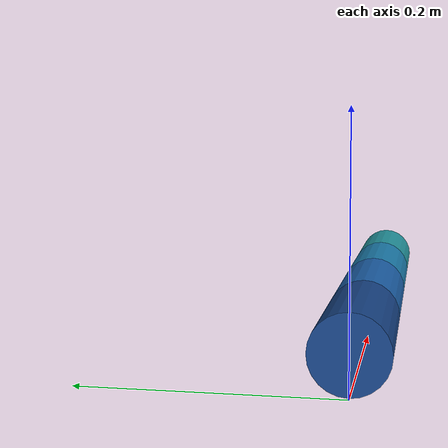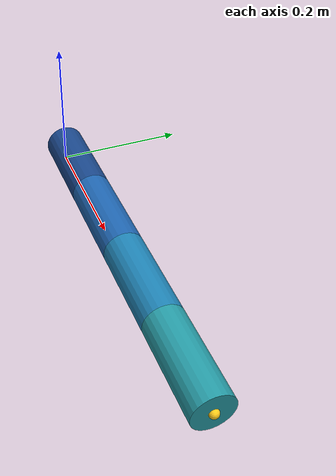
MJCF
<mujoco model="three_dof_ground_crawler_cylinder_3d">

  <compiler angle="radian" autolimits="true" inertiafromgeom="true"/>

  <default>
    <default class="link_collision">
      <geom
        type="cylinder"
        size="0.030 0.070"
        quat="0.7071067812 0 0.7071067812 0"
        mass="0.055"
        friction="1.10 0.005 0.0001"
        solref="0.006 1"
        solimp="0.90 0.95 0.001"
        condim="4"
        contype="1"
        conaffinity="1"
        margin="0.001"
        rgba="0 0 0 0"/>
    </default>

    <!-- Identical cylinder used only for visualization. -->
    <default class="link_visual">
      <geom
        type="cylinder"
        size="0.030 0.070"
        quat="0.7071067812 0 0.7071067812 0"
        mass="0"
        contype="0"
        conaffinity="0"
        group="1"/>
    </default>

    <!--
      Servo mass near each hinge. It contributes mass/inertia but is invisible
      and non-colliding, so the visible robot remains purely cylindrical.
    -->
    <default class="servo_mass">
      <geom
        type="ellipsoid"
        size="0.0203 0.0103 0.0200"
        mass="0.063"
        rgba="0 0 0 0"
        contype="0"
        conaffinity="0"
        group="3"/>
    </default>

    <!-- -90 to +90 degrees. Axis is overridden per joint below. -->
    <default class="crawler_joint">
      <joint
        type="hinge"
        range="-1.5707963268 1.5707963268"
        limited="true"
        damping="0.30"
        armature="0.002"
        frictionloss="0.05"
        margin="0.035"
        solreflimit="0.004 1"
        solimplimit="0.90 0.99 0.001"/>
    </default>

    <!-- Position command limits also equal -90 to +90 degrees. -->
    <default class="crawler_servo">
      <position
        kp="35"
        kv="1.5"
        ctrlrange="-1.5707963268 1.5707963268"
        ctrllimited="true"
        forcerange="-3.491 3.491"
        forcelimited="true"/>
    </default>
  </default>

  <worldbody>
    <!-- Root height equals the cylinder radius plus a small clearance. -->
    <body name="segment_0" pos="0 0 0.031">
      <freejoint name="root"/>

      <!-- Segment 0 extends from x=0.00 to x=0.14 m. -->
      <geom name="segment_0_collision" class="link_collision" pos="0.070 0 0"/>
      <geom name="segment_0_visual" class="link_visual" pos="0.070 0 0"
            rgba="0.10 0.28 0.55 1"/>

      <site name="imu_site" pos="0.070 0 0.022" size="0.008" rgba="1 0.2 0.2 1"/>
      <site name="base_reference" pos="0.070 0 0" size="0.006" rgba="0.2 1 0.2 1"/>

      <!-- Joint 1: yaw around local Z. -->
      <body name="segment_1" pos="0.140 0 0">
        <joint name="joint_1" class="crawler_joint" axis="0 0 1"/>
        <geom name="servo_1_mass" class="servo_mass" pos="0 0 0"/>
        <geom name="segment_1_collision" class="link_collision" pos="0.070 0 0"/>
        <geom name="segment_1_visual" class="link_visual" pos="0.070 0 0"
              rgba="0.12 0.40 0.70 1"/>

        <!-- Joint 2: pitch around local Y. -->
        <body name="segment_2" pos="0.140 0 0">
          <joint name="joint_2" class="crawler_joint" axis="0 1 0"/>
          <geom name="servo_2_mass" class="servo_mass" pos="0 0 0"/>
          <geom name="segment_2_collision" class="link_collision" pos="0.070 0 0"/>
          <geom name="segment_2_visual" class="link_visual" pos="0.070 0 0"
                rgba="0.12 0.52 0.72 1"/>

          <!-- Joint 3: pitch around local Y. -->
          <body name="segment_3" pos="0.140 0 0">
            <joint name="joint_3" class="crawler_joint" axis="0 1 0"/>
            <geom name="servo_3_mass" class="servo_mass" pos="0 0 0"/>
            <geom name="segment_3_collision" class="link_collision" pos="0.070 0 0"/>
            <geom name="segment_3_visual" class="link_visual" pos="0.070 0 0"
                  rgba="0.15 0.62 0.66 1"/>

            <site name="tail_tip" pos="0.140 0 0" size="0.007" rgba="1 0.8 0.1 1"/>
          </body>
        </body>
      </body>
    </body>
  </worldbody>

  <actuator>
    <!-- Control values are desired joint angles in radians. -->
    <position name="servo_1" class="crawler_servo" joint="joint_1"/>
    <position name="servo_2" class="crawler_servo" joint="joint_2"/>
    <position name="servo_3" class="crawler_servo" joint="joint_3"/>
  </actuator>

  <sensor>
    <!-- Joint feedback matching the three modified physical servos. -->
    <jointpos name="joint_1_pos" joint="joint_1"/>
    <jointpos name="joint_2_pos" joint="joint_2"/>
    <jointpos name="joint_3_pos" joint="joint_3"/>

    <jointvel name="joint_1_vel" joint="joint_1"/>
    <jointvel name="joint_2_vel" joint="joint_2"/>
    <jointvel name="joint_3_vel" joint="joint_3"/>

    <!-- IMU measurements in the imu_site frame. -->
    <accelerometer name="imu_lin_acc" site="imu_site"/>
    <gyro name="imu_ang_vel" site="imu_site"/>
    <framezaxis name="imu_upvector"
                objtype="body" objname="world"
                reftype="site" refname="imu_site"/>
    <subtreecom name="whole_body_com" body="segment_0"/>

  </sensor>

</mujoco>
